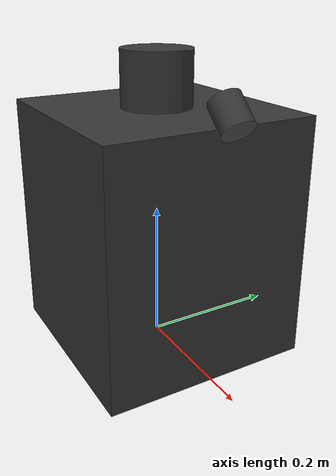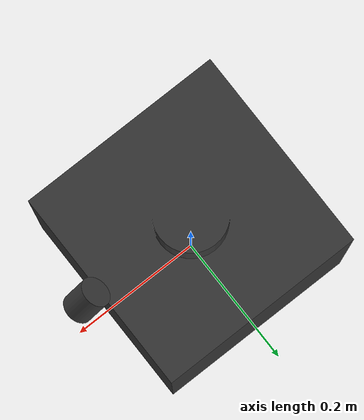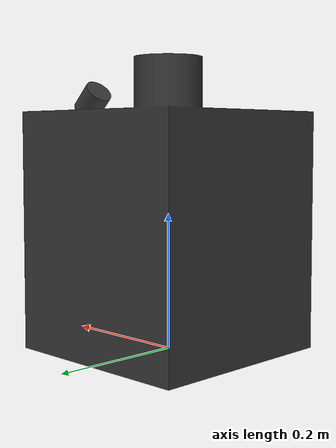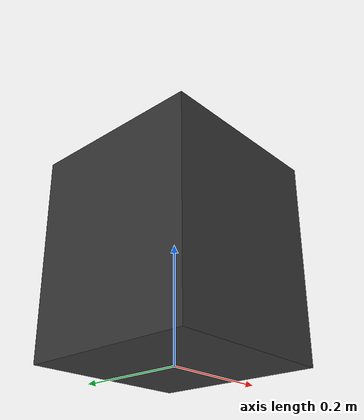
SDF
<?xml version='1.0' ?>
<sdf version="1.9">
<model name="robot_01" canonical_link="base_link">
  <joint name="camera_joint" type="fixed">
    <parent>base_link</parent>
    <child>camera_link</child>
    <axis/>
  </joint>
  <link name="base_link">
    <collision name="body_collision">
      <pose relative_to="base_link">0.00000 0.00000 0.21451 0.00000 0.00000 0.00000</pose>
      <geometry>
        <box>
          <size>0.30000 0.30000 0.42903</size>
        </box>
      </geometry>
      <surface>
        <contact/>
      </surface>
    </collision>
    <inertial>
      <inertia>
        <ixx>0.25776</ixx>
        <ixy>-0.00000</ixy>
        <ixz>-0.00000</ixz>
        <iyy>0.25776</iyy>
        <iyz>-0.00000</iyz>
        <izz>0.07287</izz>
      </inertia>
      <pose relative_to="base_link">-0.00000 0.00000 0.17916 0.00000 0.00000 0.00000</pose>
      <mass>5.00000</mass>
    </inertial>
    <visual name="body_visual">
      <material>
        <diffuse>0.21569 0.21569 0.21569 1.00000</diffuse>
        <specular>0.10588 0.10588 0.10588 0.49804</specular>
        <emissive>0.00000 0.00000 0.00000 1.00000</emissive>
      </material>
      <pose relative_to="base_link">0.00000 0.00000 0.17500 0.00000 0.00000 0.00000</pose>
      <geometry>
        <mesh>
          <uri>meshes/Cube.001.dae</uri>
          <scale>0.15000 0.15000 0.17500</scale>
        </mesh>
      </geometry>
    </visual>
  </link>
  <link name="camera_link">
    <pose relative_to="base_link">0.17000 0.00000 0.37000 0.00000 0.78540 0.00000</pose>
    <sensor name="camera_1" type="camera">
      <pose relative_to="camera_link">-0.00000 0.00000 0.00000 -0.00000 0.00000 -0.00000</pose>
      <always_on>1</always_on>
      <visualize>1</visualize>
      <enable_metrics>0</enable_metrics>
      <topic>champi/sensors/camera_1</topic>
      <camera name="camera_1">
        <pose relative_to="camera_link">-0.00000 0.00000 0.00000 -0.00000 0.00000 -0.00000</pose>
        <horizontal_fov>1.57080</horizontal_fov>
        <image>
          <width>640</width>
          <height>480</height>
        </image>
      </camera>
    </sensor>
    <collision name="camera_collision">
      <pose relative_to="camera_link">-0.00000 0.00000 0.00000 -0.00000 0.00000 -0.00000</pose>
      <geometry>
        <box>
          <size>0.05031 0.05031 0.05031</size>
        </box>
      </geometry>
      <surface>
        <contact/>
      </surface>
    </collision>
    <inertial>
      <inertia>
        <ixx>0.00003</ixx>
        <ixy>0.00000</ixy>
        <ixz>-0.00000</ixz>
        <iyy>0.00003</iyy>
        <iyz>-0.00000</iyz>
        <izz>0.00003</izz>
      </inertia>
      <pose relative_to="camera_link">0.00000 0.00000 0.00000 0.00000 0.00000 0.00000</pose>
      <mass>0.10000</mass>
    </inertial>
    <visual name="camera_visual">
      <material>
        <diffuse>0.21569 0.21569 0.21569 1.00000</diffuse>
        <specular>0.10588 0.10588 0.10588 0.49804</specular>
        <emissive>0.00000 0.00000 0.00000 1.00000</emissive>
      </material>
      <pose relative_to="camera_link">-0.00000 0.00000 -0.00000 -0.00000 0.00000 -0.00000</pose>
      <geometry>
        <mesh>
          <uri>meshes/Cylinder.002.dae</uri>
          <scale>0.02188 0.02188 0.02188</scale>
        </mesh>
      </geometry>
    </visual>
  </link>
</model>
</sdf>
